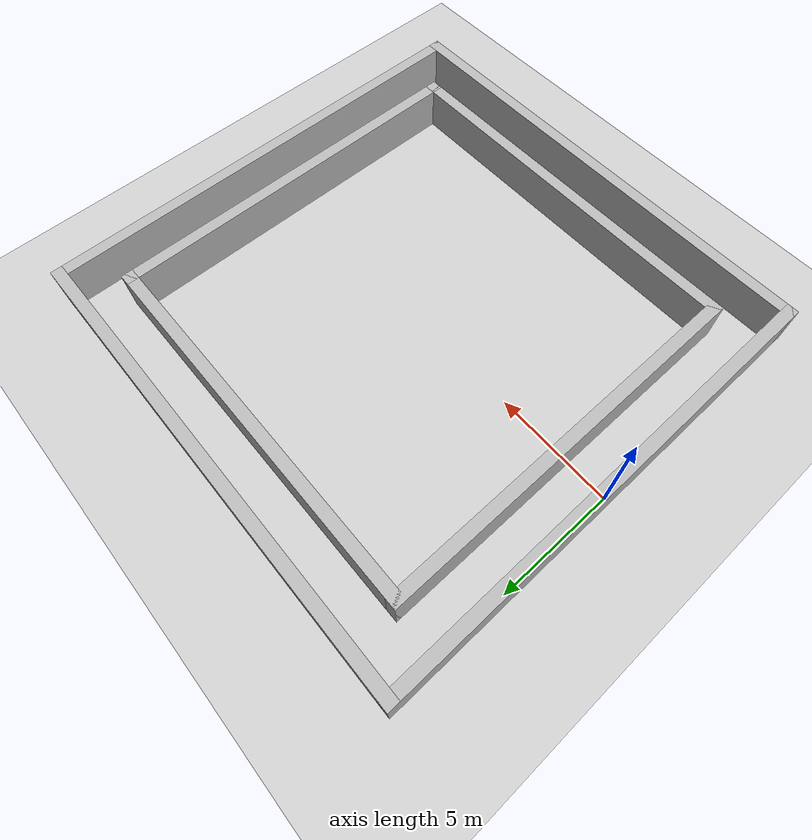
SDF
<sdf version='1.6'>
  <world name='maze_world'>
    <!-- Global light source -->
    <include>
      <uri>model://sun</uri>
    </include>

    <!-- Ground plane -->
    <include>
      <uri>model://ground_plane</uri>
    </include>

    <!-- Physics settings -->
    <physics type="ode">
      <real_time_update_rate>1000.0</real_time_update_rate>
      <max_step_size>0.001</max_step_size>
      <real_time_factor>1</real_time_factor>
      <ode>
        <solver>
          <type>quick</type>
          <iters>150</iters>
          <sor>1.400000</sor>
        </solver>
        <constraints>
          <cfm>0.00001</cfm>
          <erp>0.2</erp>
          <contact_max_correcting_vel>2000.000000</contact_max_correcting_vel>
          <contact_surface_layer>0.01000</contact_surface_layer>
        </constraints>
      </ode>
    </physics>

    <!-- Scene lighting and background -->
    <scene>
      <ambient>0.4 0.4 0.4 1</ambient>
      <background>0.7 0.7 0.7 1</background>
      <shadows>true</shadows>
    </scene>

    <!-- Adjusted Camera settings for a top-down view -->
    <gui fullscreen='0'>
      <camera name='user_camera'>
        <pose>10 0 35 0 1.57 0</pose>
        <view_controller>orbit</view_controller>
      </camera>
    </gui>

    <!-- Maze structure with open top -->
    <model name='open_top_maze'>
      <static>true</static>
      <pose>0 0 0 0 0 0</pose>
      <!-- External boundaries of the maze -->
      <!-- North wall -->
      <link name='north_wall'>
        <pose>10 10 1 0 0 0</pose>
        <collision name='collision'>
          <geometry>
            <box>
              <size>20.5 0.5 2</size>
            </box>
          </geometry>
        </collision>
        <visual name='visual'>
          <geometry>
            <box>
              <size>20.5 0.5 2</size>
            </box>
          </geometry>
        </visual>
      </link>
      <!-- South wall -->
      <link name='south_wall'>
        <pose>10 -10 1 0 0 0</pose>
        <collision name='collision'>
          <geometry>
            <box>
              <size>20.5 0.5 2</size>
            </box>
          </geometry>
        </collision>
        <visual name='visual'>
          <geometry>
            <box>
              <size>20.5 0.5 2</size>
            </box>
          </geometry>
        </visual>
      </link>
      <!-- West wall -->
      <link name='west_wall'>
        <pose>0 0 1 0 0 1.5708</pose>
        <collision name='collision'>
          <geometry>
            <box>
              <size>20.5 0.5 2</size>
            </box>
          </geometry>
        </collision>
        <visual name='visual'>
          <geometry>
            <box>
              <size>20.5 0.5 2</size>
            </box>
          </geometry>
        </visual>
      </link>
      <!-- East wall -->
      <link name='east_wall'>
        <pose>20 0 1 0 0 1.5708</pose>
        <collision name='collision'>
          <geometry>
            <box>
              <size>20.5 0.5 2</size>
            </box>
          </geometry>
        </collision>
        <visual name='visual'>
          <geometry>
            <box>
              <size>20.5 0.5 2</size>
            </box>
          </geometry>
        </visual>
      </link>
      <!-- Additional internal walls -->
      <!-- Internal Wall 1 -->
      <link name='internal_wall_1'>
        <pose>2 0 1 0 0 0</pose>
        <collision name='collision'>
          <geometry>
            <box>
              <size>0.5 16.5 2</size>
            </box>
          </geometry>
        </collision>
        <visual name='visual'>
          <geometry>
            <box>
              <size>0.5 16.5 2</size>
            </box>
          </geometry>
        </visual>
      </link>
      <!-- Internal Wall 2 -->
      <link name='internal_wall_2'>
        <pose>18 0 1 0 0 0</pose>
        <collision name='collision'>
          <geometry>
            <box>
              <size>0.5 16.5 2</size>
            </box>
          </geometry>
        </collision>
        <visual name='visual'>
          <geometry>
            <box>
              <size>0.5 16.5 2</size>
            </box>
          </geometry>
        </visual>
      </link>
      <!-- Internal Wall 3 -->
      <link name='internal_wall_3'>
        <pose>10 8 1 0 0 1.5708</pose>
        <collision name='collision'>
          <geometry>
            <box>
              <size>0.5 16.5 2</size>
            </box>
          </geometry>
        </collision>
        <visual name='visual'>
          <geometry>
            <box>
              <size>0.5 16.5 2</size>
            </box>
          </geometry>
        </visual>
      </link>
      <!-- Internal Wall 4 -->
      <link name='internal_wall_4'>
        <pose>10 -8 1 0 0 1.5708</pose>
        <collision name='collision'>
          <geometry>
            <box>
              <size>0.5 16.5 2</size>
            </box>
          </geometry>
        </collision>
        <visual name='visual'>
          <geometry>
            <box>
              <size>0.5 16.5 2</size>
            </box>
          </geometry>
        </visual>
      </link>
      <!-- Continue adding more internal walls as needed -->
    </model>
  </world>
</sdf>
